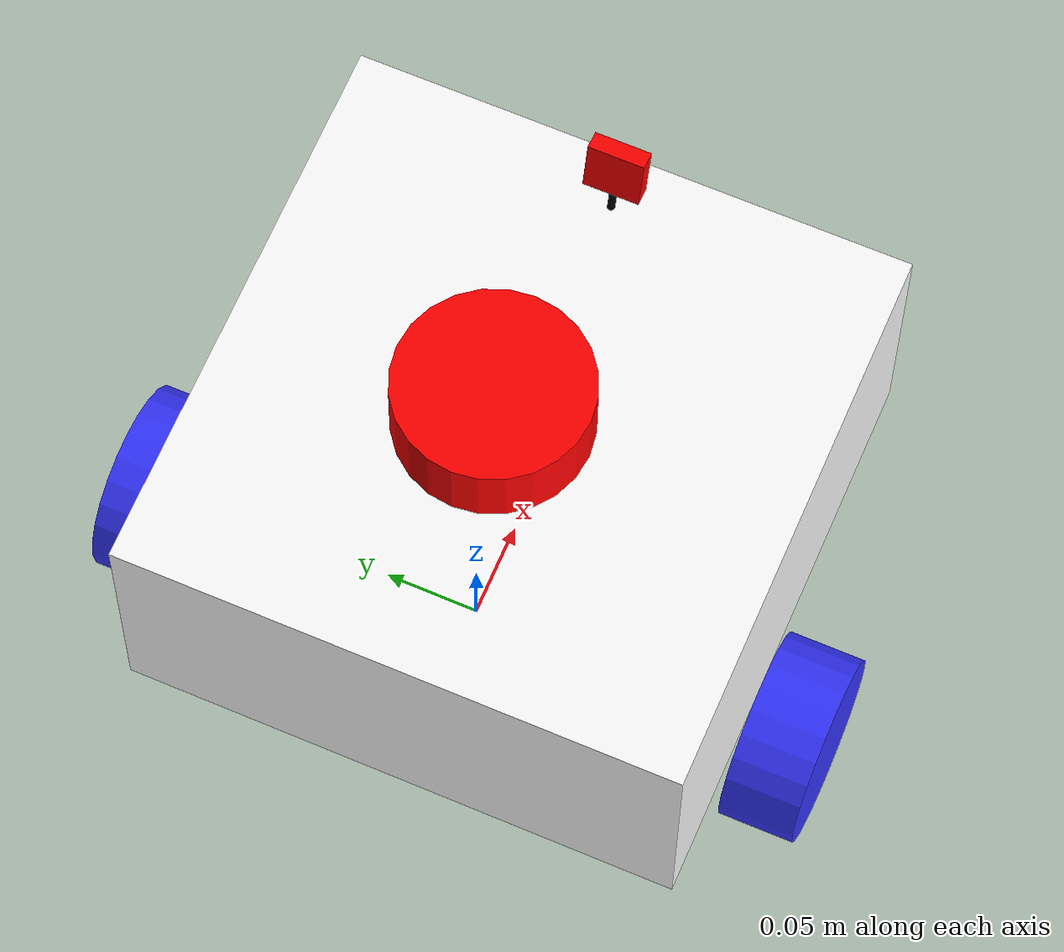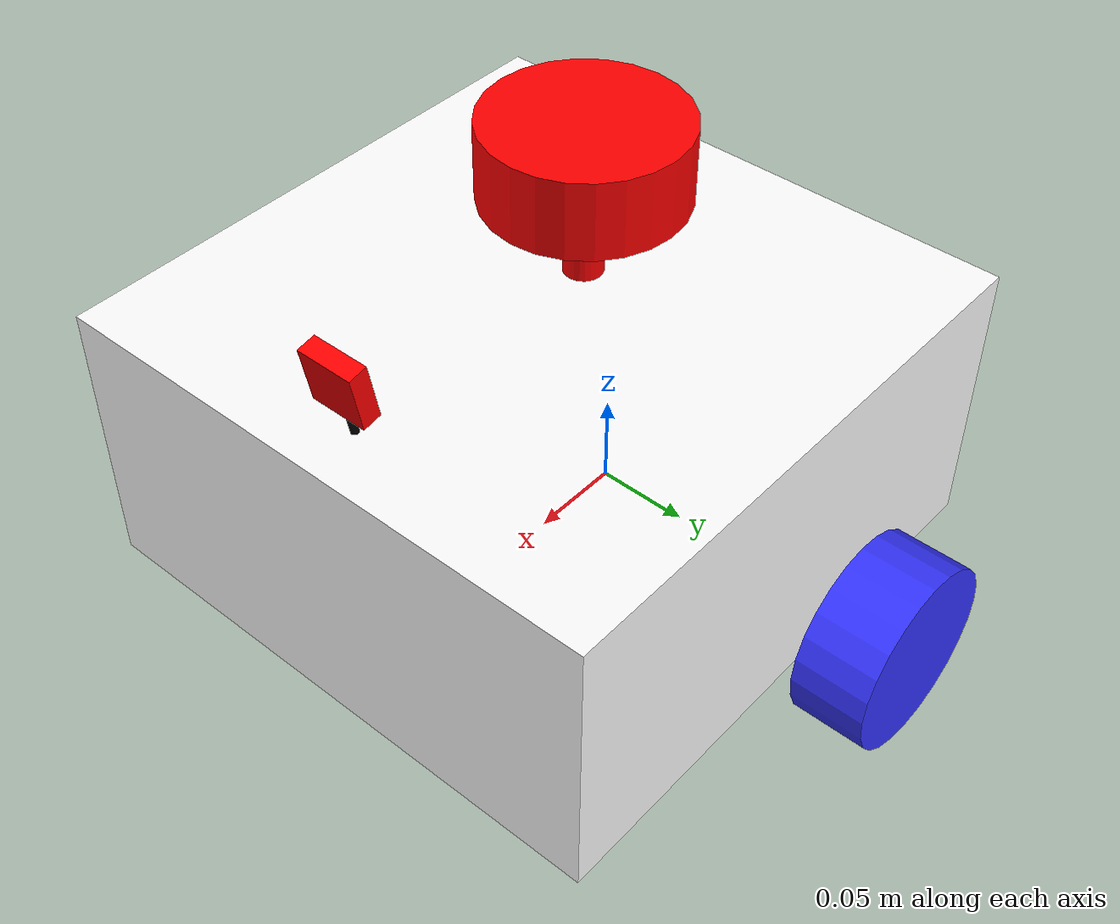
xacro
<?xml version="1.0"?>
<robot xmlns:xacro="http://www.ros.org/wiki/xacro"  name="robot">

    <xacro:include filename="robot_core.xacro"/>

    <xacro:include filename="gazebo_control.xacro"/>

    <xacro:include filename="lidar.xacro"/>

    <xacro:include filename="camera.xacro"/>

</robot>

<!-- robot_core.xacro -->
<robot xmlns:xacro="http://www.ros.org/wiki/xacro" >
    <xacro:include filename="inertial_macros.xacro"/>

    <material name="white">
        <color rgba="1 1 1 1" />
    </material>

    <material name="orange">
        <color rgba="1 0.3 0.1 1" />
    </material>

    <material name="blue">
        <color rgba="0.2 0.2 1 1" />
    </material>

    <material name="black">
        <color rgba="0 0 0 1" />
    </material>

    <material name="red">
        <color rgba="1 0 0 1"/>
    </material>

    <!-- Base link -->
    <link name = "base_link">

    </link>

    <!-- Chassis link -->

    <joint name ="chassis_joint" type="fixed">
        <parent link="base_link"/>
        <child link="chassis"/>
        <origin xyz="-0.1 0.0 0.0"/>
    </joint>

    <link name="chassis">
        <visual>
            <origin xyz="0.15 0 0.075"/>

            <geometry>
                <box size="0.3 0.3 0.15"/>
            </geometry>
            <material name ="white"/>
        </visual>
        <collision>
            <origin xyz="0.15 0 0.075"/>

            <geometry>
                <box size="0.3 0.3 0.15"/>
            </geometry>
        </collision>
        <xacro:inertial_box mass="0.5" x ="0.3" y="0.3" z="0.15">
            <origin xyz="0.15 0 0.075" rpy="0.0 0.0 0.0"/>

        </xacro:inertial_box>
    </link>

    <gazebo reference="chassis">
        <material>Gazebo/White</material>
    </gazebo>

    <!-- Left wheel link -->
    <joint name="left_wheel_joint" type="continuous">
        <parent link="base_link"/>
        <child link="left_wheel"/>
        <origin xyz="0.0 0.175 0.0" rpy="-${pi/2} 0.0 0.0"/>
        <axis xyz="0.0 0.0 1.0"/>
    </joint>

    <link name="left_wheel">
        <visual>
            <geometry>
                <cylinder radius="0.05" length="0.04"/>
            </geometry>
            <material name="blue"/>
        </visual>
        <collision>
            <geometry>
                <cylinder radius="0.05" length="0.04"/>
            </geometry>
        </collision>
        <xacro:inertial_cylinder mass="0.1" length="0.04" radius="0.05">
            <origin xyz="0.0 0.0 0.0" rpy="0.0 0.0 0.0"/>
        </xacro:inertial_cylinder>
    </link>
    <gazebo reference="left_wheel">
        <material>Gazebo/Blue</material>
    </gazebo>

    <!-- Right wheel link -->
    <joint name="right_wheel_joint" type="continuous">
        <parent link="base_link"/>
        <child link="right_wheel"/>
        <origin xyz="0.0 -0.175 0.0" rpy="${pi/2} 0.0 0.0"/>
        <axis xyz="0.0 0.0 -1.0"/>
    </joint>

    <link name="right_wheel">
        <visual>
            <geometry>
                <cylinder radius="0.05" length="0.04"/>
            </geometry>
            <material name="blue"/>
        </visual>
        <collision>
            <geometry>
                <cylinder radius="0.05" length="0.04"/>
            </geometry>
        </collision>
        <xacro:inertial_cylinder mass="0.1" length="0.04" radius="0.05">
            <origin xyz="0.0 0.0 0.0" rpy="0.0 0.0 0.0"/>
        </xacro:inertial_cylinder>
    </link>
    <gazebo reference="right_wheel">
        <material>Gazebo/Blue</material>
    </gazebo>

    <!-- Caster wheel link -->
    <joint name="caster_wheel_joint" type="fixed">
        <parent link="chassis"/>
        <child link="caster_wheel"/>
        <origin xyz="0.24 0.0 0.0"/>
    </joint>

    <link name="caster_wheel">
        <visual>
            <geometry>
                <sphere radius="0.05"/>
                <material name="black"/>
            </geometry>
        </visual>
        <collision>
            <geometry>
                <sphere radius="0.05"/>
            </geometry>
        </collision>
        <xacro:inertial_sphere mass="0.1" radius="0.05">
            <origin xyz="0.0 0.0 0.0" rpy="0.0 0.0 0.0"/>
        </xacro:inertial_sphere>
    </link>
    <gazebo reference="caster_wheel">
        <material>Gazebo/Black</material>
        <mu1 value="0.001"/>
        <mu2 value="0.001"/>
    </gazebo>

</robot>

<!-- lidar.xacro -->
<robot xmlns:xacro="http://www.ros.org/wiki/xacro" >

    <!-- vi tri cua lidar so voi chassis -->
    <joint name="laser_joint" type="fixed">
        <parent link="chassis"/>
        <child link="laser_frame"/>
        <origin xyz="0.122 0 0.212" rpy="0.0 0.0 0.0"/>
    </joint>

    <!-- dinh nghia chi tiet cho lidar -->
    <link name="laser_frame">
        <visual>
            <geometry>
                <cylinder radius="0.05" length="0.04"/>
            </geometry>
            <material name="red"/>
        </visual>
        <visual>
            <origin xyz="0 0 -0.05"/>
            <geometry>
                <cylinder radius="0.01" length="0.1"/>
            </geometry>
            <material name="red"/>
        </visual>
        <collision>
            <geometry>
                <cylinder radius="0.05" length="0.04"/>
            </geometry>
        </collision>
        <xacro:inertial_cylinder mass="0.1" length="0.04" radius="0.05">
            <origin xyz="0.0 0.0 0.0" rpy="0.0 0.0 0.0"/>
        </xacro:inertial_cylinder>
    </link>

    <gazebo reference="laser_frame">
        <!-- lien ket laser_frame duoc su dung de mo phong trong gazebo-->
        <material>Gazebo/Black</material>
        <sensor name="laser" type="ray">
            <!-- loai cam bien ray co nghia la cam bien tia laser -->
            <pose>0 0 0 0 0 0</pose>
            <!-- thanh phan pose gom xyzrpy deu bang 0 co nghia la nam chinh giua khung laser frame -->
            <visualize>false</visualize>
            <!-- kich hoat kha nang hinh anh hoa cam bien trong gazebo -->
            <update_rate>10</update_rate>
            <!--update 10 times 1 s  -->
            <ray>
                <scan>
                    <horizontal>
                        <samples>360</samples>
                        <!-- tham so quet tia phat ra 360 tia moi tia tuong ung voi 1 goc trong pham vi quet -->
                        <resolution>1</resolution>
                        <!-- do phan giai goc, o day la 1 do moi tia -->
                        <min_angle>-3.14</min_angle>
                        <max_angle>3.14</max_angle>
                    </horizontal>
                </scan>
                <range>
                    <min>0.3</min>
                    <!-- khoang cach min -->
                    <max>12</max>
                    <!-- khoang cach max -->
                </range>
            </ray>
            <plugin name="laser_controller" filename="libgazebo_ros_ray_sensor.so">       <!-- thu vien ligazebo_ros_ra_sensor su dung de xu ly du lieu lidar truyen ve-->
                <ros>
                    <argument>~/out:=scan</argument>
                </ros>
                <output_type>sensor_msgs/LaserScan</output_type>
                <frame_name>laser_frame</frame_name>        <!-- Su dung de chuyen doi giua cac he truc toa do de chuyen du lieu tu laser_frame toi cac he truc toa do khac phu hop voi mapping va localization-->
            </plugin>
        </sensor>
    </gazebo>

</robot>

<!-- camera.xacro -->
<robot xmlns:xacro="http://www.ros.org/wiki/xacro" >

    <!-- dinh nghia vi tri camera gan vao chassis -->
    <joint name="camera_joint" type="fixed">
        <parent link="chassis"/>
        <child link="camera_link"/>
        <origin xyz="0.276 0 0.181" rpy="0 0.18 0"/>
    </joint>

    <!-- dinh nghia chi tiet cho camera_link -->
    <link name="camera_link">
        <visual>
            <geometry>
                <box size="0.010 0.03 0.03"/>
            </geometry>
            <material name="red"/>
        </visual>
        <visual>
            <origin xyz="0 0 -0.05"/>
            <geometry>
                <cylinder radius="0.002" length="0.1"/>
            </geometry>
            <material name="black"/>
        </visual>
    </link>

    <!-- Them toa do cua image_standard chuyen tu he toa do robot -->
    <!-- He toa do camera_optical_joint so voi camera_link hay con goi la he toa do quang hoc -->
    <joint name="camera_optical_joint" type="fixed">
        <parent link="camera_link"/>
        <child link="camera_link_optical"/>
        <origin xyz="0.0 0.0 0.0" rpy="${-pi/2} 0.0 ${-pi/2}"/>    <!--  quay -90 do quanh truc z sau do quay -90 do quanh truc x -->
    </joint>

    <link name="camera_link_optical"></link>         <!-- duoc khai bao de chuyen doi du lieu tu camera_link sang camera_optical_link, la 1 khung toa do nhung khong co dac tinh vat ly va hoa hoc-->

    <!-- Tich hop camera vao gazebo -->

    <gazebo reference="camera_link">       <!--link ma gazebo dung de mo phong-->
        <material>Gazebo/Red</material>    <!-- Dinh nghia camera trong gazebo co mau do-->
        <!-- tham chieu gan vao laser frame -->
        <sensor name="camera" type="camera">
            <!-- loai cam bien ray co nghia la cam bien tia laser -->
            <pose>0 0 0 0 0 0</pose>
            <!-- thanh phan pose gom xyzrpy deu bang 0 co nghia la cam bien nam chinh giua camera link -->
            <visualize>true</visualize>
            <!-- kich hoat kha nang hinh anh hoa cam bien trong gazebo -->
            <update_rate>10</update_rate>
            <!--update 10 times 1 s  -->
            <camera>
                <horizontal_fov>1.089</horizontal_fov>    <!--goc nhin theo chieu ngang, theo don vi radian-->
                <image>
                    <format>R8G8B8</format>               <!--8 bit moi mau red, green, blue -->
                    <width>640</width>                    <!--theo don vi pixel-->
                    <height>480</height>
                </image>

                <clip>
                    <near>0.05</near>                     <!--range camera can see-->
                    <far>8.0</far>
                </clip>

            </camera>
            <plugin name="camera_controller" filename="libgazebo_ros_camera.so">     <!-- libgazebo_ros_camera.so  dung de quan ly qua trinh thu thap du lieu tu cam bien Camera trong Gazebo-->
                <frame_name>camera_link_optical</frame_name>      <!-- although attached to the camera link but need to publish data associated with optical_link-->
                <!-- Gui them he toa do cua camera tai thoi diem hinh anh duoc chup -->
            </plugin>
        </sensor>
    </gazebo>

</robot>
